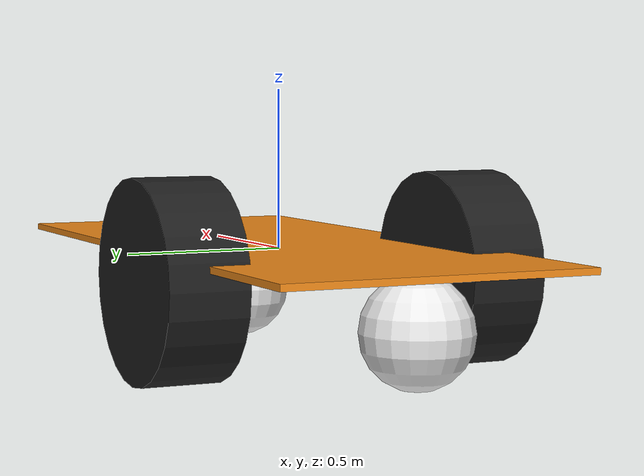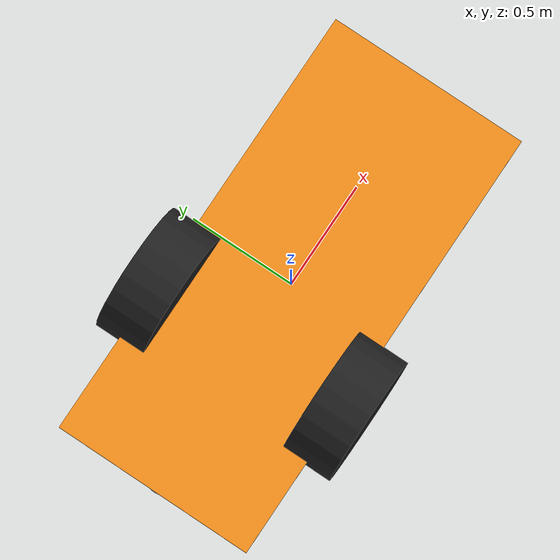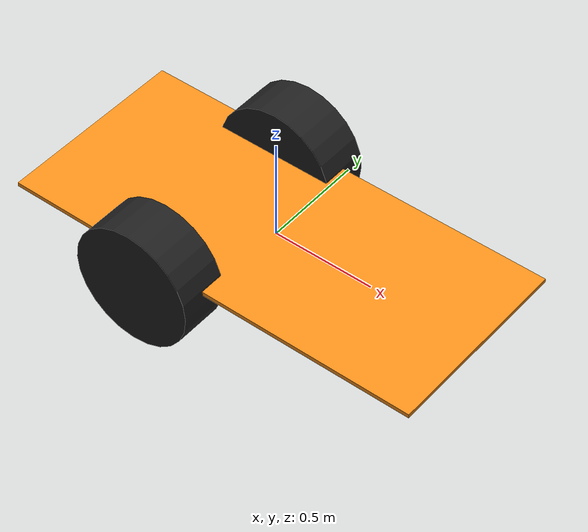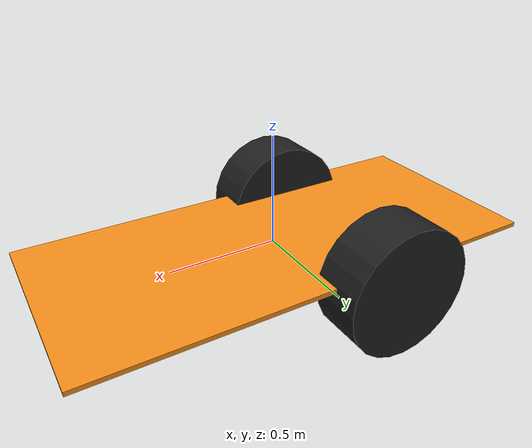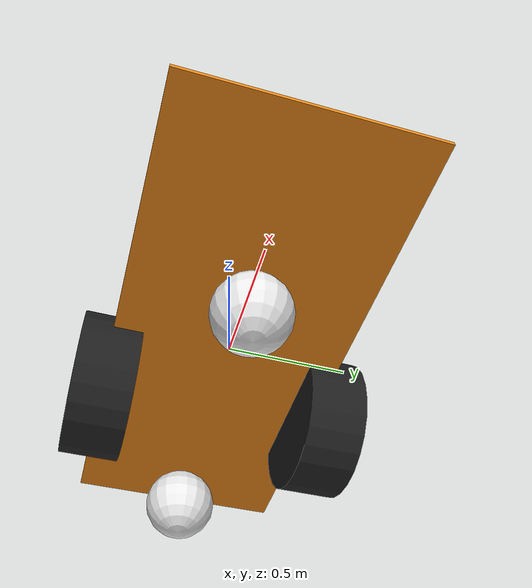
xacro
<?xml version="1.0"?>
<robot xmlns:xacro="http://www.ros.org/wiki/xacro" name="batmobil">

  <xacro:arg name="sim_mode" default="true" />
  <!-- Include core_model -->
  <xacro:include filename="update_core.xacro" />

  <!-- Include gz_config -->
  <xacro:include filename="materials.xacro" />

</robot>

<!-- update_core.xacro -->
<robot xmlns:xacro="http://www.ros.org/wiki/xacro">

  <xacro:macro name="robot" params="prefix">

   <!-- Constants for robot dimensions -->
  <xacro:property name="PI" value="3.1415926535897931"/>
  <xacro:property name="base_mass" value="0.3" /> <!-- arbitrary value for base mass -->
  <xacro:property name="base_width" value="2.10" />
  <xacro:property name="base_length" value="0.95" />
  <xacro:property name="base_height" value="0.02" />
  <xacro:property name="wheel_mass" value="0.3" /> <!-- arbitrary value for wheel mass -->
  <xacro:property name="wheel_len" value="0.24" />
  <xacro:property name="wheel_radius" value="0.3" />
  <xacro:property name="caster_wheel_mass" value="0.1" /> <!-- arbitrary value for caster wheel mass -->
  <xacro:property name="caster_wheel_radius" value="0.16" />
  <!-- xacro:property name="z_offset" value="-${base_height/2}"/--> <!-- Space btw top of beam and the each joint -->

  <!-- Base Link -->
  <link name="${prefix}base_link">
    <collision>
      <origin xyz="0 0 0" rpy="0 0 0"/>
      <geometry>
        <box size="${base_width} ${base_length} ${base_height}"/>
      </geometry>
    </collision>

    <visual>
      <origin xyz="0 0 ${base_height/2}" rpy="0 0 0"/>
      <geometry>
        <box size="${base_width} ${base_length} ${base_height}"/>
      </geometry>
      <material name="orange"/>
    </visual>

    <inertial>
      <origin xyz="0 0 0" rpy="0 0 0"/>
      <mass value="${base_mass}"/>
      <inertia
        ixx="${base_mass / 12.0 * (base_length*base_length + base_height*base_height)}" ixy="0.0" ixz="0.0"
        iyy="${base_mass / 12.0 * (base_height*base_height + base_width*base_width)}" iyz="0.0"
        izz="${base_mass / 12.0 * (base_width*base_width + base_length*base_length)}"/>
      </inertial>
    </link>

    <joint name="${prefix}left_wheel_joint" type="continuous">
      <parent link="${prefix}base_link"/>
      <child link="${prefix}left_wheel"/>
      <origin xyz="-0.3 -${base_length/2} -0.05" rpy="0 0 0"/>
      <axis xyz="0 1 0"/>
      <dynamics damping="0.2"/>
      <limit effort="100" velocity="1.0"/>
    </joint>

    <!-- left wheel Link -->
    <link name="${prefix}left_wheel">
      <collision>
        <origin xyz="0 0 0" rpy="${PI/2} 0 0"/>
        <geometry>
          <cylinder length="${wheel_len}" radius="${wheel_radius}"/>
        </geometry>
      </collision>

      <visual>
        <origin xyz="0 0 0" rpy="${PI/2} 0 0"/>
        <geometry>
          <cylinder length="${wheel_len}" radius="${wheel_radius}"/>
        </geometry>
        <material name="black"/>
      </visual>

      <inertial>
        <origin xyz="0 0 0" rpy="${PI/2} 0 0"/>
        <mass value="${wheel_mass}"/>
        <inertia
          ixx="${wheel_mass / 12.0 * (3*wheel_radius*wheel_radius + wheel_len*wheel_len)}" ixy="0.0" ixz="0.0"
          iyy="${wheel_mass / 12.0 * (3*wheel_radius*wheel_radius + wheel_len*wheel_len)}" iyz="0.0"
          izz="${wheel_mass / 2.0 * wheel_radius*wheel_radius}"/>
        </inertial>
      </link>

    <joint name="${prefix}right_wheel_joint" type="continuous">
      <parent link="${prefix}base_link"/>
      <child link="${prefix}right_wheel"/>
      <origin xyz="-0.3 ${base_length/2} -0.05" rpy="0 0 0"/>
      <axis xyz="0 1 0"/>
      <dynamics damping="0.2"/>
      <limit effort="100" velocity="1.0"/>
    </joint>

    <!-- right wheel Link -->
    <link name="${prefix}right_wheel">
      <collision>
        <origin xyz="0 0 0" rpy="${PI/2} 0 0"/>
        <geometry>
          <cylinder length="${wheel_len}" radius="${wheel_radius}"/>
        </geometry>
      </collision>

      <visual>
        <origin xyz="0 0 0" rpy="${PI/2} 0 0"/>
        <geometry>
          <cylinder length="${wheel_len}" radius="${wheel_radius}"/>
        </geometry>
        <material name="black"/>
      </visual>

      <inertial>
        <origin xyz="0 0 0" rpy="${PI/2} 0 0"/>
        <mass value="${wheel_mass}"/>
        <inertia
          ixx="${wheel_mass / 12.0 * (3*wheel_radius*wheel_radius + wheel_len*wheel_len)}" ixy="0.0" ixz="0.0"
          iyy="${wheel_mass / 12.0 * (3*wheel_radius*wheel_radius + wheel_len*wheel_len)}" iyz="0.0"
          izz="${wheel_mass / 2.0 * wheel_radius*wheel_radius}"/>
        </inertial>
      </link>

    <joint name="${prefix}caster_frontal_wheel_joint" type="fixed">
      <parent link="${prefix}base_link"/>
      <child link="${prefix}caster_frontal_wheel"/>
      <origin xyz="${base_length/2 - caster_wheel_radius} 0 -0.15" rpy="0 0 0"/>
    </joint>

    <!-- caster frontal wheel Link -->
    <link name="${prefix}caster_frontal_wheel">
      <collision>
        <origin xyz="0 0 0" rpy="0 0 0"/>
        <geometry>
          <sphere radius="${caster_wheel_radius}"/>
        </geometry>
      </collision>

      <visual>
        <origin xyz="0 0 0" rpy="0 0 0"/>
        <geometry>
          <sphere radius="${caster_wheel_radius}"/>
        </geometry>
        <material name="white"/>
      </visual>

      <inertial>
        <origin xyz="0 0 0" rpy="0 0 0"/>
        <mass value="${caster_wheel_mass}"/>
        <inertia
          ixx="${caster_wheel_mass * 0.4 * (caster_wheel_radius * caster_wheel_radius)}" ixy="0.0" ixz="0.0"
          iyy="${caster_wheel_mass * 0.4 * (caster_wheel_radius * caster_wheel_radius)}" iyz="0.0"
          izz="${caster_wheel_mass * 0.4 * (caster_wheel_radius * caster_wheel_radius)}"/>
        </inertial>
      </link>

    <joint name="${prefix}caster_rear_wheel_joint" type="fixed">
      <parent link="${prefix}base_link"/>
      <child link="${prefix}caster_rear_wheel"/>
      <origin xyz="${-base_width/2 + caster_wheel_radius} 0 -0.15" rpy="0 0 0"/>
    </joint>

    <!-- caster rear wheel Link -->
    <link name="${prefix}caster_rear_wheel">
      <collision>
        <origin xyz="0 0 0" rpy="0 0 0"/>
        <geometry>
          <sphere radius="${caster_wheel_radius}"/>
        </geometry>
      </collision>

      <visual>
        <origin xyz="0 0 0" rpy="0 0 0"/>
        <geometry>
          <sphere radius="${caster_wheel_radius}"/>
        </geometry>
        <material name="white"/>
      </visual>

      <inertial>
        <origin xyz="0 0 0" rpy="0 0 0"/>
        <mass value="${caster_wheel_mass}"/>
        <inertia
          ixx="${caster_wheel_mass * 0.4 * (caster_wheel_radius * caster_wheel_radius)}" ixy="0.0" ixz="0.0"
          iyy="${caster_wheel_mass * 0.4 * (caster_wheel_radius * caster_wheel_radius)}" iyz="0.0"
          izz="${caster_wheel_mass * 0.4 * (caster_wheel_radius * caster_wheel_radius)}"/>
        </inertial>
      </link>

  </xacro:macro>

  <xacro:robot prefix="robot_" />

</robot>
